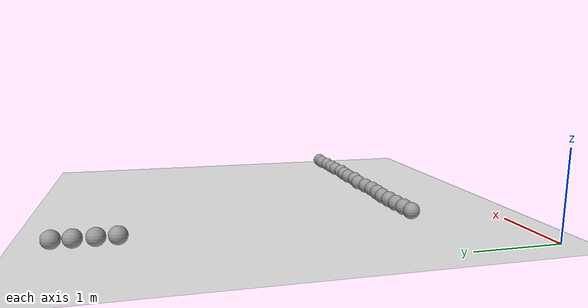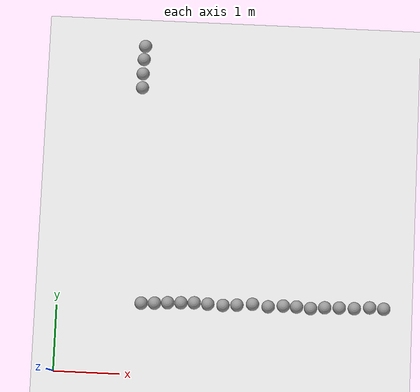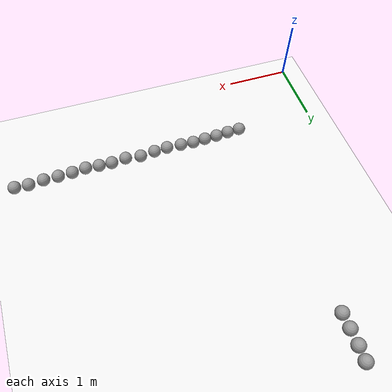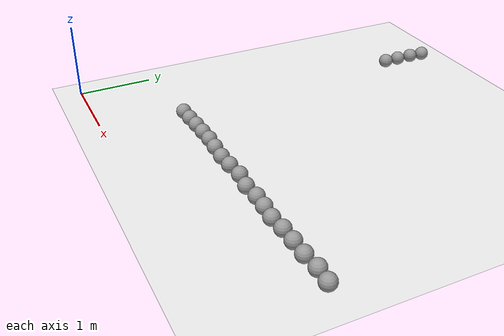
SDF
<sdf version="1.7">
 <world name="default">
  <model name="ground_plane">
   <static>1</static>
   <link name="link">
    <collision name="collision">
     <geometry><plane><normal>0 0 1</normal><size>100 100</size></plane></geometry>
     <surface>
      <contact><collide_bitmask>65535</collide_bitmask></contact>
      <friction><ode><mu>100</mu><mu2>50</mu2></ode></friction>
     </surface>
    </collision>
    <visual name="visual">
     <cast_shadows>0</cast_shadows>
     <geometry><plane><normal>0 0 1</normal><size>100 100</size></plane></geometry>
     <material>
      <script><uri>file://media/materials/scripts/gazebo.material</uri><name>Gazebo/White</name></script>
     </material>
    </visual>
   </link>
  </model>
  <model name="sphere_80">
   <link name="link_0">
    <inertial>
     <mass>1</mass>
     <inertia><ixx>0.1</ixx><ixy>0</ixy><ixz>0</ixz><iyy>0.1</iyy><iyz>0</iyz><izz>0.1</izz></inertia>
    </inertial>
    <visual name="visual">
     <geometry><sphere><radius>0.1</radius></sphere></geometry>
     <material>
      <lighting>1</lighting>
      <script><uri>file://media/materials/scripts/gazebo.material</uri><name>Gazebo/Grey</name></script>
      <shader type="pixel"><normal_map>__default__</normal_map></shader>
      <ambient>0.3 0.3 0.3 1</ambient>
      <diffuse>0.7 0.7 0.7 1</diffuse>
      <specular>0.01 0.01 0.01 1</specular>
      <emissive>0 0 0 1</emissive>
     </material>
    </visual>
    <collision name="collision">
     <geometry><sphere><radius>0.1</radius></sphere></geometry>
     <surface>
      <friction>
       <ode><mu>1</mu><mu2>1</mu2><fdir1>0 0 0</fdir1><slip1>0</slip1><slip2>0</slip2></ode>
       <torsional>
        <coefficient>1</coefficient>
        <patch_radius>0</patch_radius>
        <surface_radius>0</surface_radius>
        <use_patch_radius>1</use_patch_radius>
        <ode><slip>0</slip></ode>
       </torsional>
      </friction>
      <bounce><restitution_coefficient>0</restitution_coefficient><threshold>1e+06</threshold></bounce>
      <contact>
       <collide_without_contact>0</collide_without_contact>
       <collide_without_contact_bitmask>1</collide_without_contact_bitmask>
       <collide_bitmask>1</collide_bitmask>
       <ode>
        <soft_cfm>0</soft_cfm>
        <soft_erp>0.2</soft_erp>
        <kp>1e+13</kp>
        <kd>1</kd>
        <max_vel>0.01</max_vel>
        <min_depth>0</min_depth>
       </ode>
       <bullet>
        <split_impulse>1</split_impulse>
        <split_impulse_penetration_threshold>-0.01</split_impulse_penetration_threshold>
        <soft_cfm>0</soft_cfm>
        <soft_erp>0.2</soft_erp>
        <kp>1e+13</kp>
        <kd>1</kd>
       </bullet>
      </contact>
     </surface>
    </collision>
   </link>
   <static>0</static>
   <pose>1.2835 1.07618 0.1 0.002152 -0.001125 -0.00113</pose>
  </model>
  <model name="sphere_81">
   <link name="link_0">
    <inertial>
     <mass>1</mass>
     <inertia><ixx>0.1</ixx><ixy>0</ixy><ixz>0</ixz><iyy>0.1</iyy><iyz>0</iyz><izz>0.1</izz></inertia>
    </inertial>
    <visual name="visual">
     <geometry><sphere><radius>0.1</radius></sphere></geometry>
     <material>
      <lighting>1</lighting>
      <script><uri>file://media/materials/scripts/gazebo.material</uri><name>Gazebo/Grey</name></script>
      <shader type="pixel"><normal_map>__default__</normal_map></shader>
      <ambient>0.3 0.3 0.3 1</ambient>
      <diffuse>0.7 0.7 0.7 1</diffuse>
      <specular>0.01 0.01 0.01 1</specular>
      <emissive>0 0 0 1</emissive>
     </material>
    </visual>
    <collision name="collision">
     <geometry><sphere><radius>0.1</radius></sphere></geometry>
     <surface>
      <friction>
       <ode><mu>1</mu><mu2>1</mu2><fdir1>0 0 0</fdir1><slip1>0</slip1><slip2>0</slip2></ode>
       <torsional>
        <coefficient>1</coefficient>
        <patch_radius>0</patch_radius>
        <surface_radius>0</surface_radius>
        <use_patch_radius>1</use_patch_radius>
        <ode><slip>0</slip></ode>
       </torsional>
      </friction>
      <bounce><restitution_coefficient>0</restitution_coefficient><threshold>1e+06</threshold></bounce>
      <contact>
       <collide_without_contact>0</collide_without_contact>
       <collide_without_contact_bitmask>1</collide_without_contact_bitmask>
       <collide_bitmask>1</collide_bitmask>
       <ode>
        <soft_cfm>0</soft_cfm>
        <soft_erp>0.2</soft_erp>
        <kp>1e+13</kp>
        <kd>1</kd>
        <max_vel>0.01</max_vel>
        <min_depth>0</min_depth>
       </ode>
       <bullet>
        <split_impulse>1</split_impulse>
        <split_impulse_penetration_threshold>-0.01</split_impulse_penetration_threshold>
        <soft_cfm>0</soft_cfm>
        <soft_erp>0.2</soft_erp>
        <kp>1e+13</kp>
        <kd>1</kd>
       </bullet>
      </contact>
     </surface>
    </collision>
   </link>
   <static>0</static>
   <pose>1.48363 1.08492 0.1 0.000264 0.009958 0.001432</pose>
  </model>
  <model name="sphere_82">
   <link name="link_0">
    <inertial>
     <mass>1</mass>
     <inertia><ixx>0.1</ixx><ixy>0</ixy><ixz>0</ixz><iyy>0.1</iyy><iyz>0</iyz><izz>0.1</izz></inertia>
    </inertial>
    <visual name="visual">
     <geometry><sphere><radius>0.1</radius></sphere></geometry>
     <material>
      <lighting>1</lighting>
      <script><uri>file://media/materials/scripts/gazebo.material</uri><name>Gazebo/Grey</name></script>
      <shader type="pixel"><normal_map>__default__</normal_map></shader>
      <ambient>0.3 0.3 0.3 1</ambient>
      <diffuse>0.7 0.7 0.7 1</diffuse>
      <specular>0.01 0.01 0.01 1</specular>
      <emissive>0 0 0 1</emissive>
     </material>
    </visual>
    <collision name="collision">
     <geometry><sphere><radius>0.1</radius></sphere></geometry>
     <surface>
      <friction>
       <ode><mu>1</mu><mu2>1</mu2><fdir1>0 0 0</fdir1><slip1>0</slip1><slip2>0</slip2></ode>
       <torsional>
        <coefficient>1</coefficient>
        <patch_radius>0</patch_radius>
        <surface_radius>0</surface_radius>
        <use_patch_radius>1</use_patch_radius>
        <ode><slip>0</slip></ode>
       </torsional>
      </friction>
      <bounce><restitution_coefficient>0</restitution_coefficient><threshold>1e+06</threshold></bounce>
      <contact>
       <collide_without_contact>0</collide_without_contact>
       <collide_without_contact_bitmask>1</collide_without_contact_bitmask>
       <collide_bitmask>1</collide_bitmask>
       <ode>
        <soft_cfm>0</soft_cfm>
        <soft_erp>0.2</soft_erp>
        <kp>1e+13</kp>
        <kd>1</kd>
        <max_vel>0.01</max_vel>
        <min_depth>0</min_depth>
       </ode>
       <bullet>
        <split_impulse>1</split_impulse>
        <split_impulse_penetration_threshold>-0.01</split_impulse_penetration_threshold>
        <soft_cfm>0</soft_cfm>
        <soft_erp>0.2</soft_erp>
        <kp>1e+13</kp>
        <kd>1</kd>
       </bullet>
      </contact>
     </surface>
    </collision>
   </link>
   <static>0</static>
   <pose>1.68342 1.09913 0.1 0.000527 0.013347 0.000439</pose>
  </model>
  <model name="sphere_83">
   <link name="link_0">
    <inertial>
     <mass>1</mass>
     <inertia><ixx>0.1</ixx><ixy>0</ixy><ixz>0</ixz><iyy>0.1</iyy><iyz>0</iyz><izz>0.1</izz></inertia>
    </inertial>
    <visual name="visual">
     <geometry><sphere><radius>0.1</radius></sphere></geometry>
     <material>
      <lighting>1</lighting>
      <script><uri>file://media/materials/scripts/gazebo.material</uri><name>Gazebo/Grey</name></script>
      <shader type="pixel"><normal_map>__default__</normal_map></shader>
      <ambient>0.3 0.3 0.3 1</ambient>
      <diffuse>0.7 0.7 0.7 1</diffuse>
      <specular>0.01 0.01 0.01 1</specular>
      <emissive>0 0 0 1</emissive>
     </material>
    </visual>
    <collision name="collision">
     <geometry><sphere><radius>0.1</radius></sphere></geometry>
     <surface>
      <friction>
       <ode><mu>1</mu><mu2>1</mu2><fdir1>0 0 0</fdir1><slip1>0</slip1><slip2>0</slip2></ode>
       <torsional>
        <coefficient>1</coefficient>
        <patch_radius>0</patch_radius>
        <surface_radius>0</surface_radius>
        <use_patch_radius>1</use_patch_radius>
        <ode><slip>0</slip></ode>
       </torsional>
      </friction>
      <bounce><restitution_coefficient>0</restitution_coefficient><threshold>1e+06</threshold></bounce>
      <contact>
       <collide_without_contact>0</collide_without_contact>
       <collide_without_contact_bitmask>1</collide_without_contact_bitmask>
       <collide_bitmask>1</collide_bitmask>
       <ode>
        <soft_cfm>0</soft_cfm>
        <soft_erp>0.2</soft_erp>
        <kp>1e+13</kp>
        <kd>1</kd>
        <max_vel>0.01</max_vel>
        <min_depth>0</min_depth>
       </ode>
       <bullet>
        <split_impulse>1</split_impulse>
        <split_impulse_penetration_threshold>-0.01</split_impulse_penetration_threshold>
        <soft_cfm>0</soft_cfm>
        <soft_erp>0.2</soft_erp>
        <kp>1e+13</kp>
        <kd>1</kd>
       </bullet>
      </contact>
     </surface>
    </collision>
   </link>
   <static>0</static>
   <pose>1.88486 1.10739 0.1 -0.001026 0.008487 -0.000705</pose>
  </model>
  <model name="sphere_84">
   <link name="link_0">
    <inertial>
     <mass>1</mass>
     <inertia><ixx>0.1</ixx><ixy>0</ixy><ixz>0</ixz><iyy>0.1</iyy><iyz>0</iyz><izz>0.1</izz></inertia>
    </inertial>
    <visual name="visual">
     <geometry><sphere><radius>0.1</radius></sphere></geometry>
     <material>
      <lighting>1</lighting>
      <script><uri>file://media/materials/scripts/gazebo.material</uri><name>Gazebo/Grey</name></script>
      <shader type="pixel"><normal_map>__default__</normal_map></shader>
      <ambient>0.3 0.3 0.3 1</ambient>
      <diffuse>0.7 0.7 0.7 1</diffuse>
      <specular>0.01 0.01 0.01 1</specular>
      <emissive>0 0 0 1</emissive>
     </material>
    </visual>
    <collision name="collision">
     <geometry><sphere><radius>0.1</radius></sphere></geometry>
     <surface>
      <friction>
       <ode><mu>1</mu><mu2>1</mu2><fdir1>0 0 0</fdir1><slip1>0</slip1><slip2>0</slip2></ode>
       <torsional>
        <coefficient>1</coefficient>
        <patch_radius>0</patch_radius>
        <surface_radius>0</surface_radius>
        <use_patch_radius>1</use_patch_radius>
        <ode><slip>0</slip></ode>
       </torsional>
      </friction>
      <bounce><restitution_coefficient>0</restitution_coefficient><threshold>1e+06</threshold></bounce>
      <contact>
       <collide_without_contact>0</collide_without_contact>
       <collide_without_contact_bitmask>1</collide_without_contact_bitmask>
       <collide_bitmask>1</collide_bitmask>
       <ode>
        <soft_cfm>0</soft_cfm>
        <soft_erp>0.2</soft_erp>
        <kp>1e+13</kp>
        <kd>1</kd>
        <max_vel>0.01</max_vel>
        <min_depth>0</min_depth>
       </ode>
       <bullet>
        <split_impulse>1</split_impulse>
        <split_impulse_penetration_threshold>-0.01</split_impulse_penetration_threshold>
        <soft_cfm>0</soft_cfm>
        <soft_erp>0.2</soft_erp>
        <kp>1e+13</kp>
        <kd>1</kd>
       </bullet>
      </contact>
     </surface>
    </collision>
   </link>
   <static>0</static>
   <pose>2.08472 1.11609 0.1 -0.000358 0.008988 4e-05</pose>
  </model>
  <model name="sphere_85">
   <link name="link_0">
    <inertial>
     <mass>1</mass>
     <inertia><ixx>0.1</ixx><ixy>0</ixy><ixz>0</ixz><iyy>0.1</iyy><iyz>0</iyz><izz>0.1</izz></inertia>
    </inertial>
    <visual name="visual">
     <geometry><sphere><radius>0.1</radius></sphere></geometry>
     <material>
      <lighting>1</lighting>
      <script><uri>file://media/materials/scripts/gazebo.material</uri><name>Gazebo/Grey</name></script>
      <shader type="pixel"><normal_map>__default__</normal_map></shader>
      <ambient>0.3 0.3 0.3 1</ambient>
      <diffuse>0.7 0.7 0.7 1</diffuse>
      <specular>0.01 0.01 0.01 1</specular>
      <emissive>0 0 0 1</emissive>
     </material>
    </visual>
    <collision name="collision">
     <geometry><sphere><radius>0.1</radius></sphere></geometry>
     <surface>
      <friction>
       <ode><mu>1</mu><mu2>1</mu2><fdir1>0 0 0</fdir1><slip1>0</slip1><slip2>0</slip2></ode>
       <torsional>
        <coefficient>1</coefficient>
        <patch_radius>0</patch_radius>
        <surface_radius>0</surface_radius>
        <use_patch_radius>1</use_patch_radius>
        <ode><slip>0</slip></ode>
       </torsional>
      </friction>
      <bounce><restitution_coefficient>0</restitution_coefficient><threshold>1e+06</threshold></bounce>
      <contact>
       <collide_without_contact>0</collide_without_contact>
       <collide_without_contact_bitmask>1</collide_without_contact_bitmask>
       <collide_bitmask>1</collide_bitmask>
       <ode>
        <soft_cfm>0</soft_cfm>
        <soft_erp>0.2</soft_erp>
        <kp>1e+13</kp>
        <kd>1</kd>
        <max_vel>0.01</max_vel>
        <min_depth>0</min_depth>
       </ode>
       <bullet>
        <split_impulse>1</split_impulse>
        <split_impulse_penetration_threshold>-0.01</split_impulse_penetration_threshold>
        <soft_cfm>0</soft_cfm>
        <soft_erp>0.2</soft_erp>
        <kp>1e+13</kp>
        <kd>1</kd>
       </bullet>
      </contact>
     </surface>
    </collision>
   </link>
   <static>0</static>
   <pose>2.29148 1.1059 0.1 0 -0 0</pose>
  </model>
  <model name="sphere_86">
   <link name="link_0">
    <inertial>
     <mass>1</mass>
     <inertia><ixx>0.1</ixx><ixy>0</ixy><ixz>0</ixz><iyy>0.1</iyy><iyz>0</iyz><izz>0.1</izz></inertia>
    </inertial>
    <visual name="visual">
     <geometry><sphere><radius>0.1</radius></sphere></geometry>
     <material>
      <lighting>1</lighting>
      <script><uri>file://media/materials/scripts/gazebo.material</uri><name>Gazebo/Grey</name></script>
      <shader type="pixel"><normal_map>__default__</normal_map></shader>
      <ambient>0.3 0.3 0.3 1</ambient>
      <diffuse>0.7 0.7 0.7 1</diffuse>
      <specular>0.01 0.01 0.01 1</specular>
      <emissive>0 0 0 1</emissive>
     </material>
    </visual>
    <collision name="collision">
     <geometry><sphere><radius>0.1</radius></sphere></geometry>
     <surface>
      <friction>
       <ode><mu>1</mu><mu2>1</mu2><fdir1>0 0 0</fdir1><slip1>0</slip1><slip2>0</slip2></ode>
       <torsional>
        <coefficient>1</coefficient>
        <patch_radius>0</patch_radius>
        <surface_radius>0</surface_radius>
        <use_patch_radius>1</use_patch_radius>
        <ode><slip>0</slip></ode>
       </torsional>
      </friction>
      <bounce><restitution_coefficient>0</restitution_coefficient><threshold>1e+06</threshold></bounce>
      <contact>
       <collide_without_contact>0</collide_without_contact>
       <collide_without_contact_bitmask>1</collide_without_contact_bitmask>
       <collide_bitmask>1</collide_bitmask>
       <ode>
        <soft_cfm>0</soft_cfm>
        <soft_erp>0.2</soft_erp>
        <kp>1e+13</kp>
        <kd>1</kd>
        <max_vel>0.01</max_vel>
        <min_depth>0</min_depth>
       </ode>
       <bullet>
        <split_impulse>1</split_impulse>
        <split_impulse_penetration_threshold>-0.01</split_impulse_penetration_threshold>
        <soft_cfm>0</soft_cfm>
        <soft_erp>0.2</soft_erp>
        <kp>1e+13</kp>
        <kd>1</kd>
       </bullet>
      </contact>
     </surface>
    </collision>
   </link>
   <static>0</static>
   <pose>2.52147 1.09596 0.1 0 -0 0</pose>
  </model>
  <model name="sphere_87">
   <link name="link_0">
    <inertial>
     <mass>1</mass>
     <inertia><ixx>0.1</ixx><ixy>0</ixy><ixz>0</ixz><iyy>0.1</iyy><iyz>0</iyz><izz>0.1</izz></inertia>
    </inertial>
    <visual name="visual">
     <geometry><sphere><radius>0.1</radius></sphere></geometry>
     <material>
      <lighting>1</lighting>
      <script><uri>file://media/materials/scripts/gazebo.material</uri><name>Gazebo/Grey</name></script>
      <shader type="pixel"><normal_map>__default__</normal_map></shader>
      <ambient>0.3 0.3 0.3 1</ambient>
      <diffuse>0.7 0.7 0.7 1</diffuse>
      <specular>0.01 0.01 0.01 1</specular>
      <emissive>0 0 0 1</emissive>
     </material>
    </visual>
    <collision name="collision">
     <geometry><sphere><radius>0.1</radius></sphere></geometry>
     <surface>
      <friction>
       <ode><mu>1</mu><mu2>1</mu2><fdir1>0 0 0</fdir1><slip1>0</slip1><slip2>0</slip2></ode>
       <torsional>
        <coefficient>1</coefficient>
        <patch_radius>0</patch_radius>
        <surface_radius>0</surface_radius>
        <use_patch_radius>1</use_patch_radius>
        <ode><slip>0</slip></ode>
       </torsional>
      </friction>
      <bounce><restitution_coefficient>0</restitution_coefficient><threshold>1e+06</threshold></bounce>
      <contact>
       <collide_without_contact>0</collide_without_contact>
       <collide_without_contact_bitmask>1</collide_without_contact_bitmask>
       <collide_bitmask>1</collide_bitmask>
       <ode>
        <soft_cfm>0</soft_cfm>
        <soft_erp>0.2</soft_erp>
        <kp>1e+13</kp>
        <kd>1</kd>
        <max_vel>0.01</max_vel>
        <min_depth>0</min_depth>
       </ode>
       <bullet>
        <split_impulse>1</split_impulse>
        <split_impulse_penetration_threshold>-0.01</split_impulse_penetration_threshold>
        <soft_cfm>0</soft_cfm>
        <soft_erp>0.2</soft_erp>
        <kp>1e+13</kp>
        <kd>1</kd>
       </bullet>
      </contact>
     </surface>
    </collision>
   </link>
   <static>0</static>
   <pose>2.73287 1.10976 0.1 0 -0 0</pose>
  </model>
  <model name="sphere_88">
   <link name="link_0">
    <inertial>
     <mass>1</mass>
     <inertia><ixx>0.1</ixx><ixy>0</ixy><ixz>0</ixz><iyy>0.1</iyy><iyz>0</iyz><izz>0.1</izz></inertia>
    </inertial>
    <visual name="visual">
     <geometry><sphere><radius>0.1</radius></sphere></geometry>
     <material>
      <lighting>1</lighting>
      <script><uri>file://media/materials/scripts/gazebo.material</uri><name>Gazebo/Grey</name></script>
      <shader type="pixel"><normal_map>__default__</normal_map></shader>
      <ambient>0.3 0.3 0.3 1</ambient>
      <diffuse>0.7 0.7 0.7 1</diffuse>
      <specular>0.01 0.01 0.01 1</specular>
      <emissive>0 0 0 1</emissive>
     </material>
    </visual>
    <collision name="collision">
     <geometry><sphere><radius>0.1</radius></sphere></geometry>
     <surface>
      <friction>
       <ode><mu>1</mu><mu2>1</mu2><fdir1>0 0 0</fdir1><slip1>0</slip1><slip2>0</slip2></ode>
       <torsional>
        <coefficient>1</coefficient>
        <patch_radius>0</patch_radius>
        <surface_radius>0</surface_radius>
        <use_patch_radius>1</use_patch_radius>
        <ode><slip>0</slip></ode>
       </torsional>
      </friction>
      <bounce><restitution_coefficient>0</restitution_coefficient><threshold>1e+06</threshold></bounce>
      <contact>
       <collide_without_contact>0</collide_without_contact>
       <collide_without_contact_bitmask>1</collide_without_contact_bitmask>
       <collide_bitmask>1</collide_bitmask>
       <ode>
        <soft_cfm>0</soft_cfm>
        <soft_erp>0.2</soft_erp>
        <kp>1e+13</kp>
        <kd>1</kd>
        <max_vel>0.01</max_vel>
        <min_depth>0</min_depth>
       </ode>
       <bullet>
        <split_impulse>1</split_impulse>
        <split_impulse_penetration_threshold>-0.01</split_impulse_penetration_threshold>
        <soft_cfm>0</soft_cfm>
        <soft_erp>0.2</soft_erp>
        <kp>1e+13</kp>
        <kd>1</kd>
       </bullet>
      </contact>
     </surface>
    </collision>
   </link>
   <static>0</static>
   <pose>2.96801 1.1342 0.1 0 -0 0</pose>
  </model>
  <model name="sphere_89">
   <link name="link_0">
    <inertial>
     <mass>1</mass>
     <inertia><ixx>0.1</ixx><ixy>0</ixy><ixz>0</ixz><iyy>0.1</iyy><iyz>0</iyz><izz>0.1</izz></inertia>
    </inertial>
    <visual name="visual">
     <geometry><sphere><radius>0.1</radius></sphere></geometry>
     <material>
      <lighting>1</lighting>
      <script><uri>file://media/materials/scripts/gazebo.material</uri><name>Gazebo/Grey</name></script>
      <shader type="pixel"><normal_map>__default__</normal_map></shader>
      <ambient>0.3 0.3 0.3 1</ambient>
      <diffuse>0.7 0.7 0.7 1</diffuse>
      <specular>0.01 0.01 0.01 1</specular>
      <emissive>0 0 0 1</emissive>
     </material>
    </visual>
    <collision name="collision">
     <geometry><sphere><radius>0.1</radius></sphere></geometry>
     <surface>
      <friction>
       <ode><mu>1</mu><mu2>1</mu2><fdir1>0 0 0</fdir1><slip1>0</slip1><slip2>0</slip2></ode>
       <torsional>
        <coefficient>1</coefficient>
        <patch_radius>0</patch_radius>
        <surface_radius>0</surface_radius>
        <use_patch_radius>1</use_patch_radius>
        <ode><slip>0</slip></ode>
       </torsional>
      </friction>
      <bounce><restitution_coefficient>0</restitution_coefficient><threshold>1e+06</threshold></bounce>
      <contact>
       <collide_without_contact>0</collide_without_contact>
       <collide_without_contact_bitmask>1</collide_without_contact_bitmask>
       <collide_bitmask>1</collide_bitmask>
       <ode>
        <soft_cfm>0</soft_cfm>
        <soft_erp>0.2</soft_erp>
        <kp>1e+13</kp>
        <kd>1</kd>
        <max_vel>0.01</max_vel>
        <min_depth>0</min_depth>
       </ode>
       <bullet>
        <split_impulse>1</split_impulse>
        <split_impulse_penetration_threshold>-0.01</split_impulse_penetration_threshold>
        <soft_cfm>0</soft_cfm>
        <soft_erp>0.2</soft_erp>
        <kp>1e+13</kp>
        <kd>1</kd>
       </bullet>
      </contact>
     </surface>
    </collision>
   </link>
   <static>0</static>
   <pose>3.20589 1.10579 0.1 0 -0 0</pose>
  </model>
  <model name="sphere_90">
   <link name="link_0">
    <inertial>
     <mass>1</mass>
     <inertia><ixx>0.1</ixx><ixy>0</ixy><ixz>0</ixz><iyy>0.1</iyy><iyz>0</iyz><izz>0.1</izz></inertia>
    </inertial>
    <visual name="visual">
     <geometry><sphere><radius>0.1</radius></sphere></geometry>
     <material>
      <lighting>1</lighting>
      <script><uri>file://media/materials/scripts/gazebo.material</uri><name>Gazebo/Grey</name></script>
      <shader type="pixel"><normal_map>__default__</normal_map></shader>
      <ambient>0.3 0.3 0.3 1</ambient>
      <diffuse>0.7 0.7 0.7 1</diffuse>
      <specular>0.01 0.01 0.01 1</specular>
      <emissive>0 0 0 1</emissive>
     </material>
    </visual>
    <collision name="collision">
     <geometry><sphere><radius>0.1</radius></sphere></geometry>
     <surface>
      <friction>
       <ode><mu>1</mu><mu2>1</mu2><fdir1>0 0 0</fdir1><slip1>0</slip1><slip2>0</slip2></ode>
       <torsional>
        <coefficient>1</coefficient>
        <patch_radius>0</patch_radius>
        <surface_radius>0</surface_radius>
        <use_patch_radius>1</use_patch_radius>
        <ode><slip>0</slip></ode>
       </torsional>
      </friction>
      <bounce><restitution_coefficient>0</restitution_coefficient><threshold>1e+06</threshold></bounce>
      <contact>
       <collide_without_contact>0</collide_without_contact>
       <collide_without_contact_bitmask>1</collide_without_contact_bitmask>
       <collide_bitmask>1</collide_bitmask>
       <ode>
        <soft_cfm>0</soft_cfm>
        <soft_erp>0.2</soft_erp>
        <kp>1e+13</kp>
        <kd>1</kd>
        <max_vel>0.01</max_vel>
        <min_depth>0</min_depth>
       </ode>
       <bullet>
        <split_impulse>1</split_impulse>
        <split_impulse_penetration_threshold>-0.01</split_impulse_penetration_threshold>
        <soft_cfm>0</soft_cfm>
        <soft_erp>0.2</soft_erp>
        <kp>1e+13</kp>
        <kd>1</kd>
       </bullet>
      </contact>
     </surface>
    </collision>
   </link>
   <static>0</static>
   <pose>3.43461 1.12802 0.1 -0.000223 -0.00792 5e-06</pose>
  </model>
  <model name="sphere_91">
   <link name="link_0">
    <inertial>
     <mass>1</mass>
     <inertia><ixx>0.1</ixx><ixy>0</ixy><ixz>0</ixz><iyy>0.1</iyy><iyz>0</iyz><izz>0.1</izz></inertia>
    </inertial>
    <visual name="visual">
     <geometry><sphere><radius>0.1</radius></sphere></geometry>
     <material>
      <lighting>1</lighting>
      <script><uri>file://media/materials/scripts/gazebo.material</uri><name>Gazebo/Grey</name></script>
      <shader type="pixel"><normal_map>__default__</normal_map></shader>
      <ambient>0.3 0.3 0.3 1</ambient>
      <diffuse>0.7 0.7 0.7 1</diffuse>
      <specular>0.01 0.01 0.01 1</specular>
      <emissive>0 0 0 1</emissive>
     </material>
    </visual>
    <collision name="collision">
     <geometry><sphere><radius>0.1</radius></sphere></geometry>
     <surface>
      <friction>
       <ode><mu>1</mu><mu2>1</mu2><fdir1>0 0 0</fdir1><slip1>0</slip1><slip2>0</slip2></ode>
       <torsional>
        <coefficient>1</coefficient>
        <patch_radius>0</patch_radius>
        <surface_radius>0</surface_radius>
        <use_patch_radius>1</use_patch_radius>
        <ode><slip>0</slip></ode>
       </torsional>
      </friction>
      <bounce><restitution_coefficient>0</restitution_coefficient><threshold>1e+06</threshold></bounce>
      <contact>
       <collide_without_contact>0</collide_without_contact>
       <collide_without_contact_bitmask>1</collide_without_contact_bitmask>
       <collide_bitmask>1</collide_bitmask>
       <ode>
        <soft_cfm>0</soft_cfm>
        <soft_erp>0.2</soft_erp>
        <kp>1e+13</kp>
        <kd>1</kd>
        <max_vel>0.01</max_vel>
        <min_depth>0</min_depth>
       </ode>
       <bullet>
        <split_impulse>1</split_impulse>
        <split_impulse_penetration_threshold>-0.01</split_impulse_penetration_threshold>
        <soft_cfm>0</soft_cfm>
        <soft_erp>0.2</soft_erp>
        <kp>1e+13</kp>
        <kd>1</kd>
       </bullet>
      </contact>
     </surface>
    </collision>
   </link>
   <static>0</static>
   <pose>3.63621 1.12261 0.1 0.000235 0.008765 5e-06</pose>
  </model>
  <model name="sphere_92">
   <link name="link_0">
    <inertial>
     <mass>1</mass>
     <inertia><ixx>0.1</ixx><ixy>0</ixy><ixz>0</ixz><iyy>0.1</iyy><iyz>0</iyz><izz>0.1</izz></inertia>
    </inertial>
    <visual name="visual">
     <geometry><sphere><radius>0.1</radius></sphere></geometry>
     <material>
      <lighting>1</lighting>
      <script><uri>file://media/materials/scripts/gazebo.material</uri><name>Gazebo/Grey</name></script>
      <shader type="pixel"><normal_map>__default__</normal_map></shader>
      <ambient>0.3 0.3 0.3 1</ambient>
      <diffuse>0.7 0.7 0.7 1</diffuse>
      <specular>0.01 0.01 0.01 1</specular>
      <emissive>0 0 0 1</emissive>
     </material>
    </visual>
    <collision name="collision">
     <geometry><sphere><radius>0.1</radius></sphere></geometry>
     <surface>
      <friction>
       <ode><mu>1</mu><mu2>1</mu2><fdir1>0 0 0</fdir1><slip1>0</slip1><slip2>0</slip2></ode>
       <torsional>
        <coefficient>1</coefficient>
        <patch_radius>0</patch_radius>
        <surface_radius>0</surface_radius>
        <use_patch_radius>1</use_patch_radius>
        <ode><slip>0</slip></ode>
       </torsional>
      </friction>
      <bounce><restitution_coefficient>0</restitution_coefficient><threshold>1e+06</threshold></bounce>
      <contact>
       <collide_without_contact>0</collide_without_contact>
       <collide_without_contact_bitmask>1</collide_without_contact_bitmask>
       <collide_bitmask>1</collide_bitmask>
       <ode>
        <soft_cfm>0</soft_cfm>
        <soft_erp>0.2</soft_erp>
        <kp>1e+13</kp>
        <kd>1</kd>
        <max_vel>0.01</max_vel>
        <min_depth>0</min_depth>
       </ode>
       <bullet>
        <split_impulse>1</split_impulse>
        <split_impulse_penetration_threshold>-0.01</split_impulse_penetration_threshold>
        <soft_cfm>0</soft_cfm>
        <soft_erp>0.2</soft_erp>
        <kp>1e+13</kp>
        <kd>1</kd>
       </bullet>
      </contact>
     </surface>
    </collision>
   </link>
   <static>0</static>
   <pose>3.84824 1.10799 0.1 0 -0 0</pose>
  </model>
  <model name="sphere_94">
   <link name="link_0">
    <inertial>
     <mass>1</mass>
     <inertia><ixx>0.1</ixx><ixy>0</ixy><ixz>0</ixz><iyy>0.1</iyy><iyz>0</iyz><izz>0.1</izz></inertia>
    </inertial>
    <visual name="visual">
     <geometry><sphere><radius>0.1</radius></sphere></geometry>
     <material>
      <lighting>1</lighting>
      <script><uri>file://media/materials/scripts/gazebo.material</uri><name>Gazebo/Grey</name></script>
      <shader type="pixel"><normal_map>__default__</normal_map></shader>
      <ambient>0.3 0.3 0.3 1</ambient>
      <diffuse>0.7 0.7 0.7 1</diffuse>
      <specular>0.01 0.01 0.01 1</specular>
      <emissive>0 0 0 1</emissive>
     </material>
    </visual>
    <collision name="collision">
     <geometry><sphere><radius>0.1</radius></sphere></geometry>
     <surface>
      <friction>
       <ode><mu>1</mu><mu2>1</mu2><fdir1>0 0 0</fdir1><slip1>0</slip1><slip2>0</slip2></ode>
       <torsional>
        <coefficient>1</coefficient>
        <patch_radius>0</patch_radius>
        <surface_radius>0</surface_radius>
        <use_patch_radius>1</use_patch_radius>
        <ode><slip>0</slip></ode>
       </torsional>
      </friction>
      <bounce><restitution_coefficient>0</restitution_coefficient><threshold>1e+06</threshold></bounce>
      <contact>
       <collide_without_contact>0</collide_without_contact>
       <collide_without_contact_bitmask>1</collide_without_contact_bitmask>
       <collide_bitmask>1</collide_bitmask>
       <ode>
        <soft_cfm>0</soft_cfm>
        <soft_erp>0.2</soft_erp>
        <kp>1e+13</kp>
        <kd>1</kd>
        <max_vel>0.01</max_vel>
        <min_depth>0</min_depth>
       </ode>
       <bullet>
        <split_impulse>1</split_impulse>
        <split_impulse_penetration_threshold>-0.01</split_impulse_penetration_threshold>
        <soft_cfm>0</soft_cfm>
        <soft_erp>0.2</soft_erp>
        <kp>1e+13</kp>
        <kd>1</kd>
       </bullet>
      </contact>
     </surface>
    </collision>
   </link>
   <static>0</static>
   <pose>4.0622 1.12976 0.1 0 -0 0</pose>
  </model>
  <model name="sphere_96">
   <link name="link_0">
    <inertial>
     <mass>1</mass>
     <inertia><ixx>0.1</ixx><ixy>0</ixy><ixz>0</ixz><iyy>0.1</iyy><iyz>0</iyz><izz>0.1</izz></inertia>
    </inertial>
    <visual name="visual">
     <geometry><sphere><radius>0.1</radius></sphere></geometry>
     <material>
      <lighting>1</lighting>
      <script><uri>file://media/materials/scripts/gazebo.material</uri><name>Gazebo/Grey</name></script>
      <shader type="pixel"><normal_map>__default__</normal_map></shader>
      <ambient>0.3 0.3 0.3 1</ambient>
      <diffuse>0.7 0.7 0.7 1</diffuse>
      <specular>0.01 0.01 0.01 1</specular>
      <emissive>0 0 0 1</emissive>
     </material>
    </visual>
    <collision name="collision">
     <geometry><sphere><radius>0.1</radius></sphere></geometry>
     <surface>
      <friction>
       <ode><mu>1</mu><mu2>1</mu2><fdir1>0 0 0</fdir1><slip1>0</slip1><slip2>0</slip2></ode>
       <torsional>
        <coefficient>1</coefficient>
        <patch_radius>0</patch_radius>
        <surface_radius>0</surface_radius>
        <use_patch_radius>1</use_patch_radius>
        <ode><slip>0</slip></ode>
       </torsional>
      </friction>
      <bounce><restitution_coefficient>0</restitution_coefficient><threshold>1e+06</threshold></bounce>
      <contact>
       <collide_without_contact>0</collide_without_contact>
       <collide_without_contact_bitmask>1</collide_without_contact_bitmask>
       <collide_bitmask>1</collide_bitmask>
       <ode>
        <soft_cfm>0</soft_cfm>
        <soft_erp>0.2</soft_erp>
        <kp>1e+13</kp>
        <kd>1</kd>
        <max_vel>0.01</max_vel>
        <min_depth>0</min_depth>
       </ode>
       <bullet>
        <split_impulse>1</split_impulse>
        <split_impulse_penetration_threshold>-0.01</split_impulse_penetration_threshold>
        <soft_cfm>0</soft_cfm>
        <soft_erp>0.2</soft_erp>
        <kp>1e+13</kp>
        <kd>1</kd>
       </bullet>
      </contact>
     </surface>
    </collision>
   </link>
   <static>0</static>
   <pose>4.28206 1.1359 0.1 0 -0 0</pose>
  </model>
  <model name="sphere_98">
   <link name="link_0">
    <inertial>
     <mass>1</mass>
     <inertia><ixx>0.1</ixx><ixy>0</ixy><ixz>0</ixz><iyy>0.1</iyy><iyz>0</iyz><izz>0.1</izz></inertia>
    </inertial>
    <visual name="visual">
     <geometry><sphere><radius>0.1</radius></sphere></geometry>
     <material>
      <lighting>1</lighting>
      <script><uri>file://media/materials/scripts/gazebo.material</uri><name>Gazebo/Grey</name></script>
      <shader type="pixel"><normal_map>__default__</normal_map></shader>
      <ambient>0.3 0.3 0.3 1</ambient>
      <diffuse>0.7 0.7 0.7 1</diffuse>
      <specular>0.01 0.01 0.01 1</specular>
      <emissive>0 0 0 1</emissive>
     </material>
    </visual>
    <collision name="collision">
     <geometry><sphere><radius>0.1</radius></sphere></geometry>
     <surface>
      <friction>
       <ode><mu>1</mu><mu2>1</mu2><fdir1>0 0 0</fdir1><slip1>0</slip1><slip2>0</slip2></ode>
       <torsional>
        <coefficient>1</coefficient>
        <patch_radius>0</patch_radius>
        <surface_radius>0</surface_radius>
        <use_patch_radius>1</use_patch_radius>
        <ode><slip>0</slip></ode>
       </torsional>
      </friction>
      <bounce><restitution_coefficient>0</restitution_coefficient><threshold>1e+06</threshold></bounce>
      <contact>
       <collide_without_contact>0</collide_without_contact>
       <collide_without_contact_bitmask>1</collide_without_contact_bitmask>
       <collide_bitmask>1</collide_bitmask>
       <ode>
        <soft_cfm>0</soft_cfm>
        <soft_erp>0.2</soft_erp>
        <kp>1e+13</kp>
        <kd>1</kd>
        <max_vel>0.01</max_vel>
        <min_depth>0</min_depth>
       </ode>
       <bullet>
        <split_impulse>1</split_impulse>
        <split_impulse_penetration_threshold>-0.01</split_impulse_penetration_threshold>
        <soft_cfm>0</soft_cfm>
        <soft_erp>0.2</soft_erp>
        <kp>1e+13</kp>
        <kd>1</kd>
       </bullet>
      </contact>
     </surface>
    </collision>
   </link>
   <static>0</static>
   <pose>4.51036 1.13598 0.1 0 -0 0</pose>
  </model>
  <model name="sphere_101">
   <link name="link_0">
    <inertial>
     <mass>1</mass>
     <inertia><ixx>0.1</ixx><ixy>0</ixy><ixz>0</ixz><iyy>0.1</iyy><iyz>0</iyz><izz>0.1</izz></inertia>
    </inertial>
    <visual name="visual">
     <geometry><sphere><radius>0.1</radius></sphere></geometry>
     <material>
      <lighting>1</lighting>
      <script><uri>file://media/materials/scripts/gazebo.material</uri><name>Gazebo/Grey</name></script>
      <shader type="pixel"><normal_map>__default__</normal_map></shader>
      <ambient>0.3 0.3 0.3 1</ambient>
      <diffuse>0.7 0.7 0.7 1</diffuse>
      <specular>0.01 0.01 0.01 1</specular>
      <emissive>0 0 0 1</emissive>
     </material>
    </visual>
    <collision name="collision">
     <geometry><sphere><radius>0.1</radius></sphere></geometry>
     <surface>
      <friction>
       <ode><mu>1</mu><mu2>1</mu2><fdir1>0 0 0</fdir1><slip1>0</slip1><slip2>0</slip2></ode>
       <torsional>
        <coefficient>1</coefficient>
        <patch_radius>0</patch_radius>
        <surface_radius>0</surface_radius>
        <use_patch_radius>1</use_patch_radius>
        <ode><slip>0</slip></ode>
       </torsional>
      </friction>
      <bounce><restitution_coefficient>0</restitution_coefficient><threshold>1e+06</threshold></bounce>
      <contact>
       <collide_without_contact>0</collide_without_contact>
       <collide_without_contact_bitmask>1</collide_without_contact_bitmask>
       <collide_bitmask>1</collide_bitmask>
       <ode>
        <soft_cfm>0</soft_cfm>
        <soft_erp>0.2</soft_erp>
        <kp>1e+13</kp>
        <kd>1</kd>
        <max_vel>0.01</max_vel>
        <min_depth>0</min_depth>
       </ode>
       <bullet>
        <split_impulse>1</split_impulse>
        <split_impulse_penetration_threshold>-0.01</split_impulse_penetration_threshold>
        <soft_cfm>0</soft_cfm>
        <soft_erp>0.2</soft_erp>
        <kp>1e+13</kp>
        <kd>1</kd>
       </bullet>
      </contact>
     </surface>
    </collision>
   </link>
   <static>0</static>
   <pose>4.7423 1.15873 0.1 0 -0 0</pose>
  </model>
  <model name="sphere_102">
   <link name="link_0">
    <inertial>
     <mass>1</mass>
     <inertia><ixx>0.1</ixx><ixy>0</ixy><ixz>0</ixz><iyy>0.1</iyy><iyz>0</iyz><izz>0.1</izz></inertia>
    </inertial>
    <visual name="visual">
     <geometry><sphere><radius>0.1</radius></sphere></geometry>
     <material>
      <lighting>1</lighting>
      <script><uri>file://media/materials/scripts/gazebo.material</uri><name>Gazebo/Grey</name></script>
      <shader type="pixel"><normal_map>__default__</normal_map></shader>
      <ambient>0.3 0.3 0.3 1</ambient>
      <diffuse>0.7 0.7 0.7 1</diffuse>
      <specular>0.01 0.01 0.01 1</specular>
      <emissive>0 0 0 1</emissive>
     </material>
    </visual>
    <collision name="collision">
     <geometry><sphere><radius>0.1</radius></sphere></geometry>
     <surface>
      <friction>
       <ode><mu>1</mu><mu2>1</mu2><fdir1>0 0 0</fdir1><slip1>0</slip1><slip2>0</slip2></ode>
       <torsional>
        <coefficient>1</coefficient>
        <patch_radius>0</patch_radius>
        <surface_radius>0</surface_radius>
        <use_patch_radius>1</use_patch_radius>
        <ode><slip>0</slip></ode>
       </torsional>
      </friction>
      <bounce><restitution_coefficient>0</restitution_coefficient><threshold>1e+06</threshold></bounce>
      <contact>
       <collide_without_contact>0</collide_without_contact>
       <collide_without_contact_bitmask>1</collide_without_contact_bitmask>
       <collide_bitmask>1</collide_bitmask>
       <ode>
        <soft_cfm>0</soft_cfm>
        <soft_erp>0.2</soft_erp>
        <kp>1e+13</kp>
        <kd>1</kd>
        <max_vel>0.01</max_vel>
        <min_depth>0</min_depth>
       </ode>
       <bullet>
        <split_impulse>1</split_impulse>
        <split_impulse_penetration_threshold>-0.01</split_impulse_penetration_threshold>
        <soft_cfm>0</soft_cfm>
        <soft_erp>0.2</soft_erp>
        <kp>1e+13</kp>
        <kd>1</kd>
       </bullet>
      </contact>
     </surface>
    </collision>
   </link>
   <static>0</static>
   <pose>4.95564 1.14802 0.1 0 -0 0</pose>
  </model>
  <model name="sphere_117">
   <link name="link_0">
    <inertial>
     <mass>1</mass>
     <inertia><ixx>0.1</ixx><ixy>0</ixy><ixz>0</ixz><iyy>0.1</iyy><iyz>0</iyz><izz>0.1</izz></inertia>
    </inertial>
    <visual name="visual">
     <geometry><sphere><radius>0.1</radius></sphere></geometry>
     <material>
      <lighting>1</lighting>
      <script><uri>file://media/materials/scripts/gazebo.material</uri><name>Gazebo/Grey</name></script>
      <shader type="pixel"><normal_map>__default__</normal_map></shader>
      <ambient>0.3 0.3 0.3 1</ambient>
      <diffuse>0.7 0.7 0.7 1</diffuse>
      <specular>0.01 0.01 0.01 1</specular>
      <emissive>0 0 0 1</emissive>
     </material>
    </visual>
    <collision name="collision">
     <geometry><sphere><radius>0.1</radius></sphere></geometry>
     <surface>
      <friction>
       <ode><mu>1</mu><mu2>1</mu2><fdir1>0 0 0</fdir1><slip1>0</slip1><slip2>0</slip2></ode>
       <torsional>
        <coefficient>1</coefficient>
        <patch_radius>0</patch_radius>
        <surface_radius>0</surface_radius>
        <use_patch_radius>1</use_patch_radius>
        <ode><slip>0</slip></ode>
       </torsional>
      </friction>
      <bounce><restitution_coefficient>0</restitution_coefficient><threshold>1e+06</threshold></bounce>
      <contact>
       <collide_without_contact>0</collide_without_contact>
       <collide_without_contact_bitmask>1</collide_without_contact_bitmask>
       <collide_bitmask>1</collide_bitmask>
       <ode>
        <soft_cfm>0</soft_cfm>
        <soft_erp>0.2</soft_erp>
        <kp>1e+13</kp>
        <kd>1</kd>
        <max_vel>0.01</max_vel>
        <min_depth>0</min_depth>
       </ode>
       <bullet>
        <split_impulse>1</split_impulse>
        <split_impulse_penetration_threshold>-0.01</split_impulse_penetration_threshold>
        <soft_cfm>0</soft_cfm>
        <soft_erp>0.2</soft_erp>
        <kp>1e+13</kp>
        <kd>1</kd>
       </bullet>
      </contact>
     </surface>
    </collision>
   </link>
   <static>0</static>
   <pose>1.13622 4.38788 0.1 -0.008892 0.000687 0.000815</pose>
  </model>
  <model name="sphere_118">
   <link name="link_0">
    <inertial>
     <mass>1</mass>
     <inertia><ixx>0.1</ixx><ixy>0</ixy><ixz>0</ixz><iyy>0.1</iyy><iyz>0</iyz><izz>0.1</izz></inertia>
    </inertial>
    <visual name="visual">
     <geometry><sphere><radius>0.1</radius></sphere></geometry>
     <material>
      <lighting>1</lighting>
      <script><uri>file://media/materials/scripts/gazebo.material</uri><name>Gazebo/Grey</name></script>
      <shader type="pixel"><normal_map>__default__</normal_map></shader>
      <ambient>0.3 0.3 0.3 1</ambient>
      <diffuse>0.7 0.7 0.7 1</diffuse>
      <specular>0.01 0.01 0.01 1</specular>
      <emissive>0 0 0 1</emissive>
     </material>
    </visual>
    <collision name="collision">
     <geometry><sphere><radius>0.1</radius></sphere></geometry>
     <surface>
      <friction>
       <ode><mu>1</mu><mu2>1</mu2><fdir1>0 0 0</fdir1><slip1>0</slip1><slip2>0</slip2></ode>
       <torsional>
        <coefficient>1</coefficient>
        <patch_radius>0</patch_radius>
        <surface_radius>0</surface_radius>
        <use_patch_radius>1</use_patch_radius>
        <ode><slip>0</slip></ode>
       </torsional>
      </friction>
      <bounce><restitution_coefficient>0</restitution_coefficient><threshold>1e+06</threshold></bounce>
      <contact>
       <collide_without_contact>0</collide_without_contact>
       <collide_without_contact_bitmask>1</collide_without_contact_bitmask>
       <collide_bitmask>1</collide_bitmask>
       <ode>
        <soft_cfm>0</soft_cfm>
        <soft_erp>0.2</soft_erp>
        <kp>1e+13</kp>
        <kd>1</kd>
        <max_vel>0.01</max_vel>
        <min_depth>0</min_depth>
       </ode>
       <bullet>
        <split_impulse>1</split_impulse>
        <split_impulse_penetration_threshold>-0.01</split_impulse_penetration_threshold>
        <soft_cfm>0</soft_cfm>
        <soft_erp>0.2</soft_erp>
        <kp>1e+13</kp>
        <kd>1</kd>
       </bullet>
      </contact>
     </surface>
    </collision>
   </link>
   <static>0</static>
   <pose>1.13524 4.60449 0.1 0 -0 0</pose>
  </model>
  <model name="sphere_119">
   <link name="link_0">
    <inertial>
     <mass>1</mass>
     <inertia><ixx>0.1</ixx><ixy>0</ixy><ixz>0</ixz><iyy>0.1</iyy><iyz>0</iyz><izz>0.1</izz></inertia>
    </inertial>
    <visual name="visual">
     <geometry><sphere><radius>0.1</radius></sphere></geometry>
     <material>
      <lighting>1</lighting>
      <script><uri>file://media/materials/scripts/gazebo.material</uri><name>Gazebo/Grey</name></script>
      <shader type="pixel"><normal_map>__default__</normal_map></shader>
      <ambient>0.3 0.3 0.3 1</ambient>
      <diffuse>0.7 0.7 0.7 1</diffuse>
      <specular>0.01 0.01 0.01 1</specular>
      <emissive>0 0 0 1</emissive>
     </material>
    </visual>
    <collision name="collision">
     <geometry><sphere><radius>0.1</radius></sphere></geometry>
     <surface>
      <friction>
       <ode><mu>1</mu><mu2>1</mu2><fdir1>0 0 0</fdir1><slip1>0</slip1><slip2>0</slip2></ode>
       <torsional>
        <coefficient>1</coefficient>
        <patch_radius>0</patch_radius>
        <surface_radius>0</surface_radius>
        <use_patch_radius>1</use_patch_radius>
        <ode><slip>0</slip></ode>
       </torsional>
      </friction>
      <bounce><restitution_coefficient>0</restitution_coefficient><threshold>1e+06</threshold></bounce>
      <contact>
       <collide_without_contact>0</collide_without_contact>
       <collide_without_contact_bitmask>1</collide_without_contact_bitmask>
       <collide_bitmask>1</collide_bitmask>
       <ode>
        <soft_cfm>0</soft_cfm>
        <soft_erp>0.2</soft_erp>
        <kp>1e+13</kp>
        <kd>1</kd>
        <max_vel>0.01</max_vel>
        <min_depth>0</min_depth>
       </ode>
       <bullet>
        <split_impulse>1</split_impulse>
        <split_impulse_penetration_threshold>-0.01</split_impulse_penetration_threshold>
        <soft_cfm>0</soft_cfm>
        <soft_erp>0.2</soft_erp>
        <kp>1e+13</kp>
        <kd>1</kd>
       </bullet>
      </contact>
     </surface>
    </collision>
   </link>
   <static>0</static>
   <pose>1.13896 4.82867 0.1 0 -0 0</pose>
  </model>
  <model name="sphere_120">
   <link name="link_0">
    <inertial>
     <mass>1</mass>
     <inertia><ixx>0.1</ixx><ixy>0</ixy><ixz>0</ixz><iyy>0.1</iyy><iyz>0</iyz><izz>0.1</izz></inertia>
    </inertial>
    <visual name="visual">
     <geometry><sphere><radius>0.1</radius></sphere></geometry>
     <material>
      <lighting>1</lighting>
      <script><uri>file://media/materials/scripts/gazebo.material</uri><name>Gazebo/Grey</name></script>
      <shader type="pixel"><normal_map>__default__</normal_map></shader>
      <ambient>0.3 0.3 0.3 1</ambient>
      <diffuse>0.7 0.7 0.7 1</diffuse>
      <specular>0.01 0.01 0.01 1</specular>
      <emissive>0 0 0 1</emissive>
     </material>
    </visual>
    <collision name="collision">
     <geometry><sphere><radius>0.1</radius></sphere></geometry>
     <surface>
      <friction>
       <ode><mu>1</mu><mu2>1</mu2><fdir1>0 0 0</fdir1><slip1>0</slip1><slip2>0</slip2></ode>
       <torsional>
        <coefficient>1</coefficient>
        <patch_radius>0</patch_radius>
        <surface_radius>0</surface_radius>
        <use_patch_radius>1</use_patch_radius>
        <ode><slip>0</slip></ode>
       </torsional>
      </friction>
      <bounce><restitution_coefficient>0</restitution_coefficient><threshold>1e+06</threshold></bounce>
      <contact>
       <collide_without_contact>0</collide_without_contact>
       <collide_without_contact_bitmask>1</collide_without_contact_bitmask>
       <collide_bitmask>1</collide_bitmask>
       <ode>
        <soft_cfm>0</soft_cfm>
        <soft_erp>0.2</soft_erp>
        <kp>1e+13</kp>
        <kd>1</kd>
        <max_vel>0.01</max_vel>
        <min_depth>0</min_depth>
       </ode>
       <bullet>
        <split_impulse>1</split_impulse>
        <split_impulse_penetration_threshold>-0.01</split_impulse_penetration_threshold>
        <soft_cfm>0</soft_cfm>
        <soft_erp>0.2</soft_erp>
        <kp>1e+13</kp>
        <kd>1</kd>
       </bullet>
      </contact>
     </surface>
    </collision>
   </link>
   <static>0</static>
   <pose>1.15135 5.03615 0.1 0 -0 0</pose>
  </model>
 </world>
</sdf>
